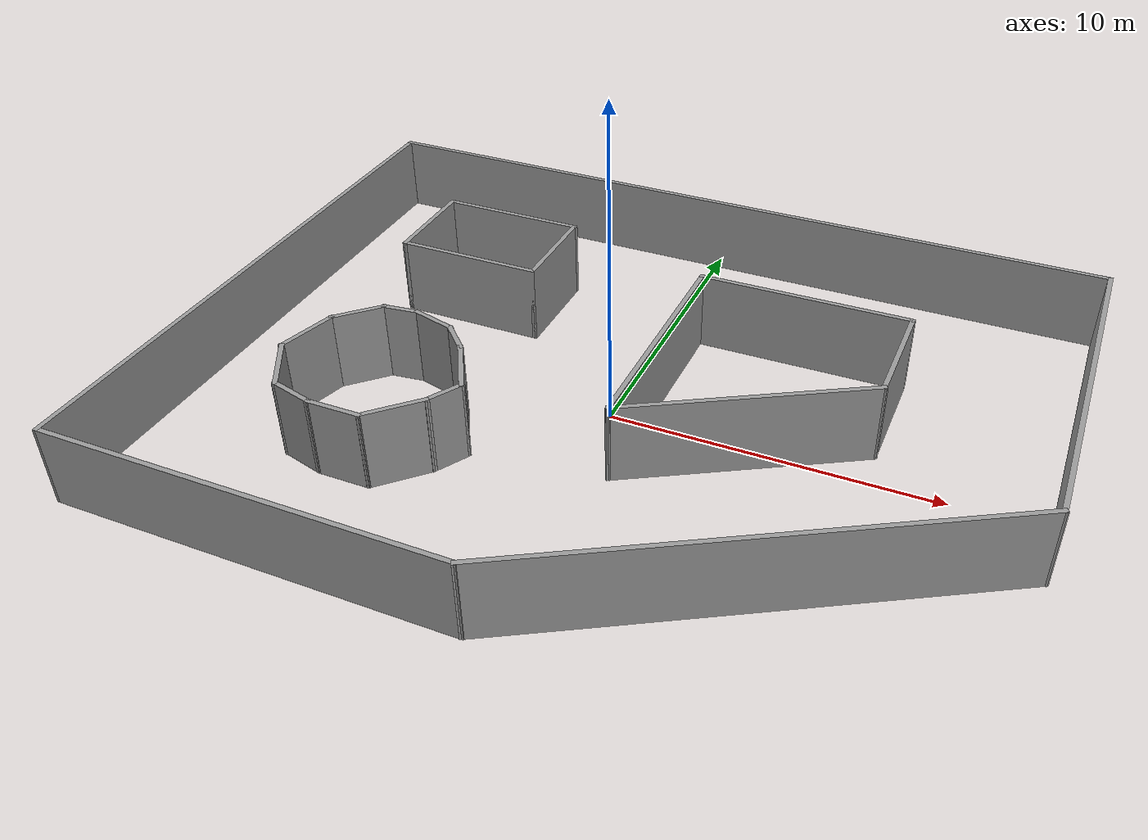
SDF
<?xml version='1.0'?>
<sdf version='1.7'>
  <model name='map3-Scale2.5'>
    <pose>0.260433 0.090473 0 0 -0 0</pose>
    <link name='Wall_11'>
      <collision name='Wall_11_Collision'>
        <geometry>
          <box>
            <size>3.25 0.15 2.5</size>
          </box>
        </geometry>
        <pose>0 0 1.25 0 -0 0</pose>
      </collision>
      <visual name='Wall_11_Visual'>
        <pose>0 0 1.25 0 -0 0</pose>
        <geometry>
          <box>
            <size>3.25 0.15 2.5</size>
          </box>
        </geometry>
        <material>
          <script>
            <uri>file://media/materials/scripts/gazebo.material</uri>
            <name>Gazebo/Grey</name>
          </script>
          <ambient>1 1 1 1</ambient>
        </material>
        <meta>
          <layer>0</layer>
        </meta>
      </visual>
      <pose>-8.7945 4.40938 0 0 -0 -1.5708</pose>
    </link>
    <link name='Wall_12'>
      <collision name='Wall_12_Collision'>
        <geometry>
          <box>
            <size>4.75 0.15 2.5</size>
          </box>
        </geometry>
        <pose>0 0 1.25 0 -0 0</pose>
      </collision>
      <visual name='Wall_12_Visual'>
        <pose>0 0 1.25 0 -0 0</pose>
        <geometry>
          <box>
            <size>4.75 0.15 2.5</size>
          </box>
        </geometry>
        <material>
          <script>
            <uri>file://media/materials/scripts/gazebo.material</uri>
            <name>Gazebo/Grey</name>
          </script>
          <ambient>1 1 1 1</ambient>
        </material>
        <meta>
          <layer>0</layer>
        </meta>
      </visual>
      <pose>-6.4945 2.85938 0 0 -0 0</pose>
    </link>
    <link name='Wall_13'>
      <collision name='Wall_13_Collision'>
        <geometry>
          <box>
            <size>3.25 0.15 2.5</size>
          </box>
        </geometry>
        <pose>0 0 1.25 0 -0 0</pose>
      </collision>
      <visual name='Wall_13_Visual'>
        <pose>0 0 1.25 0 -0 0</pose>
        <geometry>
          <box>
            <size>3.25 0.15 2.5</size>
          </box>
        </geometry>
        <material>
          <script>
            <uri>file://media/materials/scripts/gazebo.material</uri>
            <name>Gazebo/Grey</name>
          </script>
          <ambient>1 1 1 1</ambient>
        </material>
        <meta>
          <layer>0</layer>
        </meta>
      </visual>
      <pose>-4.1945 4.40938 0 0 -0 1.5708</pose>
    </link>
    <link name='Wall_16'>
      <collision name='Wall_16_Collision'>
        <geometry>
          <box>
            <size>4.75 0.15 2.5</size>
          </box>
        </geometry>
        <pose>0 0 1.25 0 -0 0</pose>
      </collision>
      <visual name='Wall_16_Visual'>
        <pose>0 0 1.25 0 -0 0</pose>
        <geometry>
          <box>
            <size>4.75 0.15 2.5</size>
          </box>
        </geometry>
        <material>
          <script>
            <uri>file://media/materials/scripts/gazebo.material</uri>
            <name>Gazebo/Grey</name>
          </script>
          <ambient>1 1 1 1</ambient>
        </material>
        <meta>
          <layer>0</layer>
        </meta>
      </visual>
      <pose>-6.4945 5.95938 0 0 -0 0</pose>
    </link>
    <link name='Wall_18'>
      <collision name='Wall_18_Collision'>
        <geometry>
          <box>
            <size>7.5 0.15 2.5</size>
          </box>
        </geometry>
        <pose>0 0 1.25 0 -0 0</pose>
      </collision>
      <visual name='Wall_18_Visual'>
        <pose>0 0 1.25 0 -0 0</pose>
        <geometry>
          <box>
            <size>7.5 0.15 2.5</size>
          </box>
        </geometry>
        <material>
          <script>
            <uri>file://media/materials/scripts/gazebo.material</uri>
            <name>Gazebo/Grey</name>
          </script>
          <ambient>1 1 1 1</ambient>
        </material>
        <meta>
          <layer>0</layer>
        </meta>
      </visual>
      <pose>0.805497 0.98003 0 0 -0 -1.5708</pose>
    </link>
    <link name='Wall_19'>
      <collision name='Wall_19_Collision'>
        <geometry>
          <box>
            <size>7.75 0.15 2.5</size>
          </box>
        </geometry>
        <pose>0 0 1.25 0 -0 0</pose>
      </collision>
      <visual name='Wall_19_Visual'>
        <pose>0 0 1.25 0 -0 0</pose>
        <geometry>
          <box>
            <size>7.75 0.15 2.5</size>
          </box>
        </geometry>
        <material>
          <script>
            <uri>file://media/materials/scripts/gazebo.material</uri>
            <name>Gazebo/Grey</name>
          </script>
          <ambient>1 1 1 1</ambient>
        </material>
        <meta>
          <layer>0</layer>
        </meta>
      </visual>
      <pose>4.09639 -0.79497 0 0 -0 0.523599</pose>
    </link>
    <link name='Wall_2'>
      <collision name='Wall_2_Collision'>
        <geometry>
          <box>
            <size>14.75 0.15 2.5</size>
          </box>
        </geometry>
        <pose>0 0 1.25 0 -0 0</pose>
      </collision>
      <visual name='Wall_2_Visual'>
        <pose>0 0 1.25 0 -0 0</pose>
        <geometry>
          <box>
            <size>14.75 0.15 2.5</size>
          </box>
        </geometry>
        <material>
          <script>
            <uri>file://media/materials/scripts/gazebo.material</uri>
            <name>Gazebo/Grey</name>
          </script>
          <ambient>1 1 1 1</ambient>
        </material>
        <meta>
          <layer>0</layer>
        </meta>
      </visual>
      <pose>6.21444 -5.78627 0 0 -0 0.523599</pose>
    </link>
    <link name='Wall_20'>
      <collision name='Wall_20_Collision'>
        <geometry>
          <box>
            <size>3.75 0.15 2.5</size>
          </box>
        </geometry>
        <pose>0 0 1.25 0 -0 0</pose>
      </collision>
      <visual name='Wall_20_Visual'>
        <pose>0 0 1.25 0 -0 0</pose>
        <geometry>
          <box>
            <size>3.75 0.15 2.5</size>
          </box>
        </geometry>
        <material>
          <script>
            <uri>file://media/materials/scripts/gazebo.material</uri>
            <name>Gazebo/Grey</name>
          </script>
          <ambient>1 1 1 1</ambient>
        </material>
        <meta>
          <layer>0</layer>
        </meta>
      </visual>
      <pose>7.38729 2.90503 0 0 -0 1.5708</pose>
    </link>
    <link name='Wall_21'>
      <collision name='Wall_21_Collision'>
        <geometry>
          <box>
            <size>6.73198 0.15 2.5</size>
          </box>
        </geometry>
        <pose>0 0 1.25 0 -0 0</pose>
      </collision>
      <visual name='Wall_21_Visual'>
        <pose>0 0 1.25 0 -0 0</pose>
        <geometry>
          <box>
            <size>6.73198 0.15 2.5</size>
          </box>
        </geometry>
        <material>
          <script>
            <uri>file://media/materials/scripts/gazebo.material</uri>
            <name>Gazebo/Grey</name>
          </script>
          <ambient>1 1 1 1</ambient>
        </material>
        <meta>
          <layer>0</layer>
        </meta>
      </visual>
      <pose>4.09639 4.68003 0 0 -0 -3.134</pose>
    </link>
    <link name='Wall_23'>
      <collision name='Wall_23_Collision'>
        <geometry>
          <box>
            <size>1.75 0.15 2.5</size>
          </box>
        </geometry>
        <pose>0 0 1.25 0 -0 0</pose>
      </collision>
      <visual name='Wall_23_Visual'>
        <pose>0 0 1.25 0 -0 0</pose>
        <geometry>
          <box>
            <size>1.75 0.15 2.5</size>
          </box>
        </geometry>
        <material>
          <script>
            <uri>file://media/materials/scripts/gazebo.material</uri>
            <name>Gazebo/Grey</name>
          </script>
          <ambient>1 1 1 1</ambient>
        </material>
        <meta>
          <layer>0</layer>
        </meta>
      </visual>
      <pose>-7.95149 -1.28457 0 0 -0 -2.35619</pose>
    </link>
    <link name='Wall_24'>
      <collision name='Wall_24_Collision'>
        <geometry>
          <box>
            <size>2 0.15 2.5</size>
          </box>
        </geometry>
        <pose>0 0 1.25 0 -0 0</pose>
      </collision>
      <visual name='Wall_24_Visual'>
        <pose>0 0 1.25 0 -0 0</pose>
        <geometry>
          <box>
            <size>2 0.15 2.5</size>
          </box>
        </geometry>
        <material>
          <script>
            <uri>file://media/materials/scripts/gazebo.material</uri>
            <name>Gazebo/Grey</name>
          </script>
          <ambient>1 1 1 1</ambient>
        </material>
        <meta>
          <layer>0</layer>
        </meta>
      </visual>
      <pose>-8.75659 -2.74374 0 0 -0 -1.8326</pose>
    </link>
    <link name='Wall_25'>
      <collision name='Wall_25_Collision'>
        <geometry>
          <box>
            <size>2 0.15 2.5</size>
          </box>
        </geometry>
        <pose>0 0 1.25 0 -0 0</pose>
      </collision>
      <visual name='Wall_25_Visual'>
        <pose>0 0 1.25 0 -0 0</pose>
        <geometry>
          <box>
            <size>2 0.15 2.5</size>
          </box>
        </geometry>
        <material>
          <script>
            <uri>file://media/materials/scripts/gazebo.material</uri>
            <name>Gazebo/Grey</name>
          </script>
          <ambient>1 1 1 1</ambient>
        </material>
        <meta>
          <layer>0</layer>
        </meta>
      </visual>
      <pose>-8.53349 -4.43829 0 0 -0 -1.0472</pose>
    </link>
    <link name='Wall_26'>
      <collision name='Wall_26_Collision'>
        <geometry>
          <box>
            <size>1.5 0.15 2.5</size>
          </box>
        </geometry>
        <pose>0 0 1.25 0 -0 0</pose>
      </collision>
      <visual name='Wall_26_Visual'>
        <pose>0 0 1.25 0 -0 0</pose>
        <geometry>
          <box>
            <size>1.5 0.15 2.5</size>
          </box>
        </geometry>
        <material>
          <script>
            <uri>file://media/materials/scripts/gazebo.material</uri>
            <name>Gazebo/Grey</name>
          </script>
          <ambient>1 1 1 1</ambient>
        </material>
        <meta>
          <layer>0</layer>
        </meta>
      </visual>
      <pose>-7.41899 -5.41407 0 0 -0 -0.261799</pose>
    </link>
    <link name='Wall_27'>
      <collision name='Wall_27_Collision'>
        <geometry>
          <box>
            <size>1.75 0.15 2.5</size>
          </box>
        </geometry>
        <pose>0 0 1.25 0 -0 0</pose>
      </collision>
      <visual name='Wall_27_Visual'>
        <pose>0 0 1.25 0 -0 0</pose>
        <geometry>
          <box>
            <size>1.75 0.15 2.5</size>
          </box>
        </geometry>
        <material>
          <script>
            <uri>file://media/materials/scripts/gazebo.material</uri>
            <name>Gazebo/Grey</name>
          </script>
          <ambient>1 1 1 1</ambient>
        </material>
        <meta>
          <layer>0</layer>
        </meta>
      </visual>
      <pose>-5.96699 -5.58877 0 0 -0 0</pose>
    </link>
    <link name='Wall_28'>
      <collision name='Wall_28_Collision'>
        <geometry>
          <box>
            <size>2 0.15 2.5</size>
          </box>
        </geometry>
        <pose>0 0 1.25 0 -0 0</pose>
      </collision>
      <visual name='Wall_28_Visual'>
        <pose>0 0 1.25 0 -0 0</pose>
        <geometry>
          <box>
            <size>2 0.15 2.5</size>
          </box>
        </geometry>
        <material>
          <script>
            <uri>file://media/materials/scripts/gazebo.material</uri>
            <name>Gazebo/Grey</name>
          </script>
          <ambient>1 1 1 1</ambient>
        </material>
        <meta>
          <layer>0</layer>
        </meta>
      </visual>
      <pose>-4.51292 -4.9347 0 0 -0 0.785398</pose>
    </link>
    <link name='Wall_29'>
      <collision name='Wall_29_Collision'>
        <geometry>
          <box>
            <size>1.25 0.15 2.5</size>
          </box>
        </geometry>
        <pose>0 0 1.25 0 -0 0</pose>
      </collision>
      <visual name='Wall_29_Visual'>
        <pose>0 0 1.25 0 -0 0</pose>
        <geometry>
          <box>
            <size>1.25 0.15 2.5</size>
          </box>
        </geometry>
        <material>
          <script>
            <uri>file://media/materials/scripts/gazebo.material</uri>
            <name>Gazebo/Grey</name>
          </script>
          <ambient>1 1 1 1</ambient>
        </material>
        <meta>
          <layer>0</layer>
        </meta>
      </visual>
      <pose>-3.58385 -3.80431 0 0 -0 1.0472</pose>
    </link>
    <link name='Wall_3'>
      <collision name='Wall_3_Collision'>
        <geometry>
          <box>
            <size>11.75 0.15 2.5</size>
          </box>
        </geometry>
        <pose>0 0 1.25 0 -0 0</pose>
      </collision>
      <visual name='Wall_3_Visual'>
        <pose>0 0 1.25 0 -0 0</pose>
        <geometry>
          <box>
            <size>11.75 0.15 2.5</size>
          </box>
        </geometry>
        <material>
          <script>
            <uri>file://media/materials/scripts/gazebo.material</uri>
            <name>Gazebo/Grey</name>
          </script>
          <ambient>1 1 1 1</ambient>
        </material>
        <meta>
          <layer>0</layer>
        </meta>
      </visual>
      <pose>12.5364 3.66372 0 0 -0 1.5708</pose>
    </link>
    <link name='Wall_30'>
      <collision name='Wall_30_Collision'>
        <geometry>
          <box>
            <size>2 0.15 2.5</size>
          </box>
        </geometry>
        <pose>0 0 1.25 0 -0 0</pose>
      </collision>
      <visual name='Wall_30_Visual'>
        <pose>0 0 1.25 0 -0 0</pose>
        <geometry>
          <box>
            <size>2 0.15 2.5</size>
          </box>
        </geometry>
        <material>
          <script>
            <uri>file://media/materials/scripts/gazebo.material</uri>
            <name>Gazebo/Grey</name>
          </script>
          <ambient>1 1 1 1</ambient>
        </material>
        <meta>
          <layer>0</layer>
        </meta>
      </visual>
      <pose>-3.77135 -2.52692 0 0 -0 2.0944</pose>
    </link>
    <link name='Wall_31'>
      <collision name='Wall_31_Collision'>
        <geometry>
          <box>
            <size>1.25 0.15 2.5</size>
          </box>
        </geometry>
        <pose>0 0 1.25 0 -0 0</pose>
      </collision>
      <visual name='Wall_31_Visual'>
        <pose>0 0 1.25 0 -0 0</pose>
        <geometry>
          <box>
            <size>1.25 0.15 2.5</size>
          </box>
        </geometry>
        <material>
          <script>
            <uri>file://media/materials/scripts/gazebo.material</uri>
            <name>Gazebo/Grey</name>
          </script>
          <ambient>1 1 1 1</ambient>
        </material>
        <meta>
          <layer>0</layer>
        </meta>
      </visual>
      <pose>-4.62275 -1.33694 0 0 -0 2.35619</pose>
    </link>
    <link name='Wall_32'>
      <collision name='Wall_32_Collision'>
        <geometry>
          <box>
            <size>1.5 0.15 2.5</size>
          </box>
        </geometry>
        <pose>0 0 1.25 0 -0 0</pose>
      </collision>
      <visual name='Wall_32_Visual'>
        <pose>0 0 1.25 0 -0 0</pose>
        <geometry>
          <box>
            <size>1.5 0.15 2.5</size>
          </box>
        </geometry>
        <material>
          <script>
            <uri>file://media/materials/scripts/gazebo.material</uri>
            <name>Gazebo/Grey</name>
          </script>
          <ambient>1 1 1 1</ambient>
        </material>
        <meta>
          <layer>0</layer>
        </meta>
      </visual>
      <pose>-5.66366 -0.773327 0 0 -0 2.87979</pose>
    </link>
    <link name='Wall_33'>
      <collision name='Wall_33_Collision'>
        <geometry>
          <box>
            <size>1.22688 0.15 2.5</size>
          </box>
        </geometry>
        <pose>0 0 1.25 0 -0 0</pose>
      </collision>
      <visual name='Wall_33_Visual'>
        <pose>0 0 1.25 0 -0 0</pose>
        <geometry>
          <box>
            <size>1.22688 0.15 2.5</size>
          </box>
        </geometry>
        <material>
          <script>
            <uri>file://media/materials/scripts/gazebo.material</uri>
            <name>Gazebo/Grey</name>
          </script>
          <ambient>1 1 1 1</ambient>
        </material>
        <meta>
          <layer>0</layer>
        </meta>
      </visual>
      <pose>-6.85074 -0.658754 0 0 -0 -3.02969</pose>
    </link>
    <link name='Wall_6'>
      <collision name='Wall_6_Collision'>
        <geometry>
          <box>
            <size>25.25 0.15 2.5</size>
          </box>
        </geometry>
        <pose>0 0 1.25 0 -0 0</pose>
      </collision>
      <visual name='Wall_6_Visual'>
        <pose>0 0 1.25 0 -0 0</pose>
        <geometry>
          <box>
            <size>25.25 0.15 2.5</size>
          </box>
        </geometry>
        <material>
          <script>
            <uri>file://media/materials/scripts/gazebo.material</uri>
            <name>Gazebo/Grey</name>
          </script>
          <ambient>1 1 1 1</ambient>
        </material>
        <meta>
          <layer>0</layer>
        </meta>
      </visual>
      <pose>-0.013576 9.46373 0 0 -0 3.14159</pose>
    </link>
    <link name='Wall_7'>
      <collision name='Wall_7_Collision'>
        <geometry>
          <box>
            <size>19 0.15 2.5</size>
          </box>
        </geometry>
        <pose>0 0 1.25 0 -0 0</pose>
      </collision>
      <visual name='Wall_7_Visual'>
        <pose>0 0 1.25 0 -0 0</pose>
        <geometry>
          <box>
            <size>19 0.15 2.5</size>
          </box>
        </geometry>
        <material>
          <script>
            <uri>file://media/materials/scripts/gazebo.material</uri>
            <name>Gazebo/Grey</name>
          </script>
          <ambient>1 1 1 1</ambient>
        </material>
        <meta>
          <layer>0</layer>
        </meta>
      </visual>
      <pose>-12.5636 0.038725 0 0 -0 -1.5708</pose>
    </link>
    <link name='Wall_9'>
      <collision name='Wall_9_Collision'>
        <geometry>
          <box>
            <size>12.6061 0.15 2.5</size>
          </box>
        </geometry>
        <pose>0 0 1.25 0 -0 0</pose>
      </collision>
      <visual name='Wall_9_Visual'>
        <pose>0 0 1.25 0 -0 0</pose>
        <geometry>
          <box>
            <size>12.6061 0.15 2.5</size>
          </box>
        </geometry>
        <material>
          <script>
            <uri>file://media/materials/scripts/gazebo.material</uri>
            <name>Gazebo/Grey</name>
          </script>
          <ambient>1 1 1 1</ambient>
        </material>
        <meta>
          <layer>0</layer>
        </meta>
      </visual>
      <pose>-6.33556 -9.41127 0 0 -0 -0.004014</pose>
    </link>
    <static>1</static>
  </model>
</sdf>
